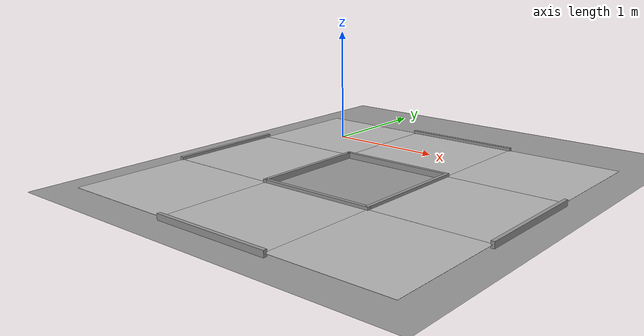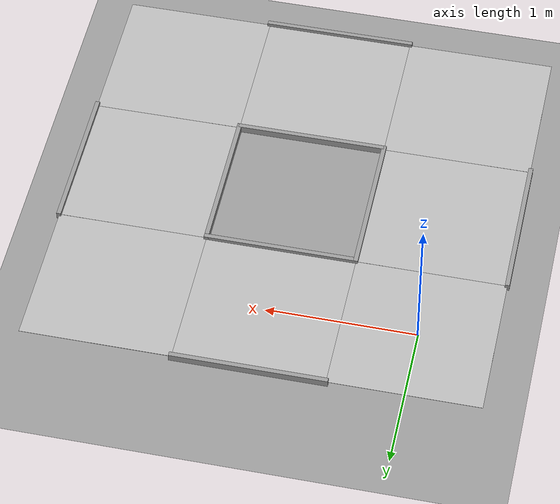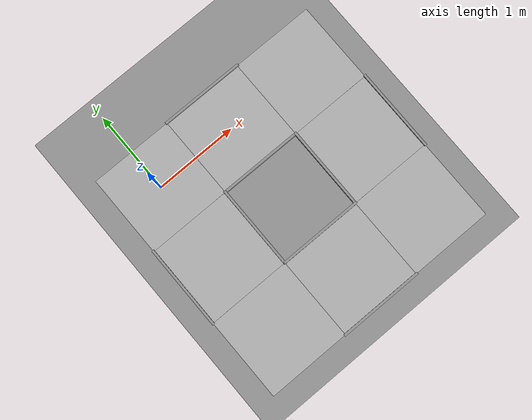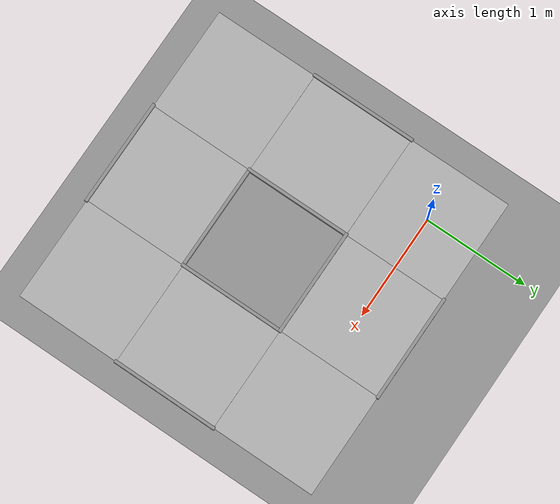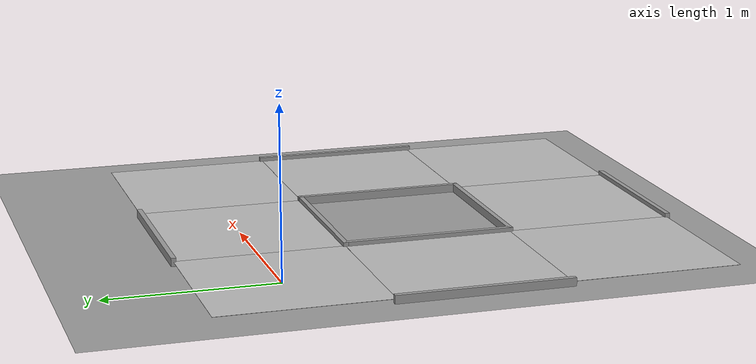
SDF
<sdf version="1.7">
 <world name="road_test">
  <scene>
   <ambient>120 120 120 255</ambient>
   <sky><clouds><speed>5</speed></clouds><time>13</time></sky>
   <background>0.7 0.7 0.7 1</background>
   <shadows>1</shadows>
  </scene>
  <model name="road_intersection_0_0">
   <frame name="road_intersection::__model__" attached_to="road_intersection::link">
    <pose relative_to="__model__">0 0 0 0 -0 0</pose>
   </frame>
   <static>1</static>
   <link name="road_intersection::link">
    <collision name="collision">
     <geometry><plane><normal>0 0 1</normal><size>1 1</size></plane></geometry>
     <surface><friction><ode><mu>75</mu><mu2>75</mu2></ode></friction></surface>
    </collision>
    <visual name="visual">
     <cast_shadows>0</cast_shadows>
     <geometry><plane><normal>0 0 1</normal><size>1 1</size></plane></geometry>
     <material>
      <script>
       <uri>model://road_intersection/materials/scripts</uri>
       <uri>model://road_intersection/materials/textures</uri>
       <name>road_intersection/Image</name>
      </script>
     </material>
    </visual>
    <pose relative_to="road_intersection::__model__">0 0 0 0 -0 0</pose>
   </link>
   <pose>0 0 0.02 0 -0 0</pose>
  </model>
  <model name="road_straight_0_1">
   <frame name="road_straight::__model__" attached_to="road_straight::link">
    <pose relative_to="__model__">0 0 0 0 -0 0</pose>
   </frame>
   <static>1</static>
   <link name="road_straight::link">
    <collision name="collision">
     <geometry><plane><normal>0 0 1</normal><size>1 1</size></plane></geometry>
     <surface><friction><ode><mu>75</mu><mu2>75</mu2></ode></friction></surface>
    </collision>
    <visual name="visual">
     <cast_shadows>0</cast_shadows>
     <geometry><plane><normal>0 0 1</normal><size>1 1</size></plane></geometry>
     <material>
      <script>
       <uri>model://road_straight/materials/scripts</uri>
       <uri>model://road_straight/materials/textures</uri>
       <name>road_straight/Image</name>
      </script>
     </material>
    </visual>
    <pose relative_to="road_straight::__model__">0 0 0 0 -0 0</pose>
   </link>
   <pose>1 0 0.02 0 -0 0</pose>
  </model>
  <model name="curb_0_1">
   <frame name="curb::__model__" attached_to="curb::Wall_0">
    <pose relative_to="__model__">0 0.5 0 0 -0 0</pose>
   </frame>
   <link name="curb::Wall_0">
    <collision name="Wall_0_Collision"><geometry><box><size>1.03 0.03 0.05</size></box></geometry></collision>
    <visual name="Wall_0_Visual">
     <geometry><box><size>1.03 0.03 0.05</size></box></geometry>
     <material>
      <script><uri>file://media/materials/scripts/gazebo.material</uri><name>Gazebo/Grey</name></script>
      <ambient>1 1 1 0.5</ambient>
      <diffuse>0 0 0 0</diffuse>
     </material>
     <meta><layer>0</layer></meta>
    </visual>
    <pose relative_to="curb::__model__">0 0 0 0 -0 3.14159</pose>
   </link>
   <link name="curb::Wall_2">
    <collision name="Wall_2_Collision"><geometry><box><size>1.03 0.03 0.05</size></box></geometry></collision>
    <visual name="Wall_2_Visual">
     <geometry><box><size>1.03 0.03 0.05</size></box></geometry>
     <material>
      <script><uri>file://media/materials/scripts/gazebo.material</uri><name>Gazebo/Grey</name></script>
      <ambient>1 1 1 0.5</ambient>
      <diffuse>0 0 0 0</diffuse>
     </material>
     <meta><layer>0</layer></meta>
    </visual>
    <pose relative_to="curb::__model__">0 -1 0 0 -0 0</pose>
   </link>
   <static>1</static>
   <pose>1 0 0.02 0 -0 0</pose>
  </model>
  <model name="road_intersection_0_2">
   <frame name="road_intersection::__model__" attached_to="road_intersection::link">
    <pose relative_to="__model__">0 0 0 0 -0 0</pose>
   </frame>
   <static>1</static>
   <link name="road_intersection::link">
    <collision name="collision">
     <geometry><plane><normal>0 0 1</normal><size>1 1</size></plane></geometry>
     <surface><friction><ode><mu>75</mu><mu2>75</mu2></ode></friction></surface>
    </collision>
    <visual name="visual">
     <cast_shadows>0</cast_shadows>
     <geometry><plane><normal>0 0 1</normal><size>1 1</size></plane></geometry>
     <material>
      <script>
       <uri>model://road_intersection/materials/scripts</uri>
       <uri>model://road_intersection/materials/textures</uri>
       <name>road_intersection/Image</name>
      </script>
     </material>
    </visual>
    <pose relative_to="road_intersection::__model__">0 0 0 0 -0 0</pose>
   </link>
   <pose>2 0 0.02 0 -0 0</pose>
  </model>
  <model name="road_straight_1_0">
   <frame name="road_straight::__model__" attached_to="road_straight::link">
    <pose relative_to="__model__">0 0 0 0 -0 0</pose>
   </frame>
   <static>1</static>
   <link name="road_straight::link">
    <collision name="collision">
     <geometry><plane><normal>0 0 1</normal><size>1 1</size></plane></geometry>
     <surface><friction><ode><mu>75</mu><mu2>75</mu2></ode></friction></surface>
    </collision>
    <visual name="visual">
     <cast_shadows>0</cast_shadows>
     <geometry><plane><normal>0 0 1</normal><size>1 1</size></plane></geometry>
     <material>
      <script>
       <uri>model://road_straight/materials/scripts</uri>
       <uri>model://road_straight/materials/textures</uri>
       <name>road_straight/Image</name>
      </script>
     </material>
    </visual>
    <pose relative_to="road_straight::__model__">0 0 0 0 -0 0</pose>
   </link>
   <pose>0 -1 0.02 0 -0 1.57</pose>
  </model>
  <model name="curb_1_0">
   <frame name="curb::__model__" attached_to="curb::Wall_0">
    <pose relative_to="__model__">0 0.5 0 0 -0 0</pose>
   </frame>
   <link name="curb::Wall_0">
    <collision name="Wall_0_Collision"><geometry><box><size>1.03 0.03 0.05</size></box></geometry></collision>
    <visual name="Wall_0_Visual">
     <geometry><box><size>1.03 0.03 0.05</size></box></geometry>
     <material>
      <script><uri>file://media/materials/scripts/gazebo.material</uri><name>Gazebo/Grey</name></script>
      <ambient>1 1 1 0.5</ambient>
      <diffuse>0 0 0 0</diffuse>
     </material>
     <meta><layer>0</layer></meta>
    </visual>
    <pose relative_to="curb::__model__">0 0 0 0 -0 3.14159</pose>
   </link>
   <link name="curb::Wall_2">
    <collision name="Wall_2_Collision"><geometry><box><size>1.03 0.03 0.05</size></box></geometry></collision>
    <visual name="Wall_2_Visual">
     <geometry><box><size>1.03 0.03 0.05</size></box></geometry>
     <material>
      <script><uri>file://media/materials/scripts/gazebo.material</uri><name>Gazebo/Grey</name></script>
      <ambient>1 1 1 0.5</ambient>
      <diffuse>0 0 0 0</diffuse>
     </material>
     <meta><layer>0</layer></meta>
    </visual>
    <pose relative_to="curb::__model__">0 -1 0 0 -0 0</pose>
   </link>
   <static>1</static>
   <pose>-0 -1 0.02 0 -0 1.57</pose>
  </model>
  <model name="ground_plane_1_1">
   <frame name="ground_plane::__model__" attached_to="ground_plane::link">
    <pose relative_to="__model__">0 0 0 0 -0 0</pose>
   </frame>
   <static>1</static>
   <link name="ground_plane::link">
    <collision name="collision">
     <geometry><plane><normal>0 0 1</normal><size>100 100</size></plane></geometry>
     <surface><friction><ode><mu>100</mu><mu2>50</mu2></ode></friction></surface>
    </collision>
    <visual name="visual">
     <cast_shadows>0</cast_shadows>
     <geometry><plane><normal>0 0 1</normal><size>100 100</size></plane></geometry>
     <material>
      <script><uri>file://media/materials/scripts/gazebo.material</uri><name>Gazebo/Grey</name></script>
     </material>
    </visual>
    <pose relative_to="ground_plane::__model__">0 0 0 0 -0 0</pose>
   </link>
   <pose>1 -1 0 0 -0 0</pose>
  </model>
  <model name="road_straight_1_2">
   <frame name="road_straight::__model__" attached_to="road_straight::link">
    <pose relative_to="__model__">0 0 0 0 -0 0</pose>
   </frame>
   <static>1</static>
   <link name="road_straight::link">
    <collision name="collision">
     <geometry><plane><normal>0 0 1</normal><size>1 1</size></plane></geometry>
     <surface><friction><ode><mu>75</mu><mu2>75</mu2></ode></friction></surface>
    </collision>
    <visual name="visual">
     <cast_shadows>0</cast_shadows>
     <geometry><plane><normal>0 0 1</normal><size>1 1</size></plane></geometry>
     <material>
      <script>
       <uri>model://road_straight/materials/scripts</uri>
       <uri>model://road_straight/materials/textures</uri>
       <name>road_straight/Image</name>
      </script>
     </material>
    </visual>
    <pose relative_to="road_straight::__model__">0 0 0 0 -0 0</pose>
   </link>
   <pose>2 -1 0.02 0 -0 1.57</pose>
  </model>
  <model name="curb_1_2">
   <frame name="curb::__model__" attached_to="curb::Wall_0">
    <pose relative_to="__model__">0 0.5 0 0 -0 0</pose>
   </frame>
   <link name="curb::Wall_0">
    <collision name="Wall_0_Collision"><geometry><box><size>1.03 0.03 0.05</size></box></geometry></collision>
    <visual name="Wall_0_Visual">
     <geometry><box><size>1.03 0.03 0.05</size></box></geometry>
     <material>
      <script><uri>file://media/materials/scripts/gazebo.material</uri><name>Gazebo/Grey</name></script>
      <ambient>1 1 1 0.5</ambient>
      <diffuse>0 0 0 0</diffuse>
     </material>
     <meta><layer>0</layer></meta>
    </visual>
    <pose relative_to="curb::__model__">0 0 0 0 -0 3.14159</pose>
   </link>
   <link name="curb::Wall_2">
    <collision name="Wall_2_Collision"><geometry><box><size>1.03 0.03 0.05</size></box></geometry></collision>
    <visual name="Wall_2_Visual">
     <geometry><box><size>1.03 0.03 0.05</size></box></geometry>
     <material>
      <script><uri>file://media/materials/scripts/gazebo.material</uri><name>Gazebo/Grey</name></script>
      <ambient>1 1 1 0.5</ambient>
      <diffuse>0 0 0 0</diffuse>
     </material>
     <meta><layer>0</layer></meta>
    </visual>
    <pose relative_to="curb::__model__">0 -1 0 0 -0 0</pose>
   </link>
   <static>1</static>
   <pose>2 -1 0.02 0 -0 1.57</pose>
  </model>
  <model name="road_intersection_2_0">
   <frame name="road_intersection::__model__" attached_to="road_intersection::link">
    <pose relative_to="__model__">0 0 0 0 -0 0</pose>
   </frame>
   <static>1</static>
   <link name="road_intersection::link">
    <collision name="collision">
     <geometry><plane><normal>0 0 1</normal><size>1 1</size></plane></geometry>
     <surface><friction><ode><mu>75</mu><mu2>75</mu2></ode></friction></surface>
    </collision>
    <visual name="visual">
     <cast_shadows>0</cast_shadows>
     <geometry><plane><normal>0 0 1</normal><size>1 1</size></plane></geometry>
     <material>
      <script>
       <uri>model://road_intersection/materials/scripts</uri>
       <uri>model://road_intersection/materials/textures</uri>
       <name>road_intersection/Image</name>
      </script>
     </material>
    </visual>
    <pose relative_to="road_intersection::__model__">0 0 0 0 -0 0</pose>
   </link>
   <pose>0 -2 0.02 0 -0 0</pose>
  </model>
  <model name="road_straight_2_1">
   <frame name="road_straight::__model__" attached_to="road_straight::link">
    <pose relative_to="__model__">0 0 0 0 -0 0</pose>
   </frame>
   <static>1</static>
   <link name="road_straight::link">
    <collision name="collision">
     <geometry><plane><normal>0 0 1</normal><size>1 1</size></plane></geometry>
     <surface><friction><ode><mu>75</mu><mu2>75</mu2></ode></friction></surface>
    </collision>
    <visual name="visual">
     <cast_shadows>0</cast_shadows>
     <geometry><plane><normal>0 0 1</normal><size>1 1</size></plane></geometry>
     <material>
      <script>
       <uri>model://road_straight/materials/scripts</uri>
       <uri>model://road_straight/materials/textures</uri>
       <name>road_straight/Image</name>
      </script>
     </material>
    </visual>
    <pose relative_to="road_straight::__model__">0 0 0 0 -0 0</pose>
   </link>
   <pose>1 -2 0.02 0 -0 0</pose>
  </model>
  <model name="curb_2_1">
   <frame name="curb::__model__" attached_to="curb::Wall_0">
    <pose relative_to="__model__">0 0.5 0 0 -0 0</pose>
   </frame>
   <link name="curb::Wall_0">
    <collision name="Wall_0_Collision"><geometry><box><size>1.03 0.03 0.05</size></box></geometry></collision>
    <visual name="Wall_0_Visual">
     <geometry><box><size>1.03 0.03 0.05</size></box></geometry>
     <material>
      <script><uri>file://media/materials/scripts/gazebo.material</uri><name>Gazebo/Grey</name></script>
      <ambient>1 1 1 0.5</ambient>
      <diffuse>0 0 0 0</diffuse>
     </material>
     <meta><layer>0</layer></meta>
    </visual>
    <pose relative_to="curb::__model__">0 0 0 0 -0 3.14159</pose>
   </link>
   <link name="curb::Wall_2">
    <collision name="Wall_2_Collision"><geometry><box><size>1.03 0.03 0.05</size></box></geometry></collision>
    <visual name="Wall_2_Visual">
     <geometry><box><size>1.03 0.03 0.05</size></box></geometry>
     <material>
      <script><uri>file://media/materials/scripts/gazebo.material</uri><name>Gazebo/Grey</name></script>
      <ambient>1 1 1 0.5</ambient>
      <diffuse>0 0 0 0</diffuse>
     </material>
     <meta><layer>0</layer></meta>
    </visual>
    <pose relative_to="curb::__model__">0 -1 0 0 -0 0</pose>
   </link>
   <static>1</static>
   <pose>1 -2 0.02 0 -0 0</pose>
  </model>
  <model name="road_intersection_2_2">
   <frame name="road_intersection::__model__" attached_to="road_intersection::link">
    <pose relative_to="__model__">0 0 0 0 -0 0</pose>
   </frame>
   <static>1</static>
   <link name="road_intersection::link">
    <collision name="collision">
     <geometry><plane><normal>0 0 1</normal><size>1 1</size></plane></geometry>
     <surface><friction><ode><mu>75</mu><mu2>75</mu2></ode></friction></surface>
    </collision>
    <visual name="visual">
     <cast_shadows>0</cast_shadows>
     <geometry><plane><normal>0 0 1</normal><size>1 1</size></plane></geometry>
     <material>
      <script>
       <uri>model://road_intersection/materials/scripts</uri>
       <uri>model://road_intersection/materials/textures</uri>
       <name>road_intersection/Image</name>
      </script>
     </material>
    </visual>
    <pose relative_to="road_intersection::__model__">0 0 0 0 -0 0</pose>
   </link>
   <pose>2 -2 0.02 0 -0 0</pose>
  </model>
  <light name="sun" type="directional">
   <pose>0 0 10 0 -0 0</pose>
   <diffuse>0.8 0.8 0.8 1</diffuse>
   <specular>0.2 0.2 0.2 1</specular>
   <attenuation>
    <range>1000</range>
    <constant>0.9</constant>
    <linear>0.01</linear>
    <quadratic>0.001</quadratic>
   </attenuation>
   <direction>-0.5 0.1 -0.9</direction>
   <spot><inner_angle>0</inner_angle><outer_angle>0</outer_angle><falloff>0</falloff></spot>
  </light>
  <gravity>0 0 -9.8</gravity>
  <magnetic_field>6e-06 2.3e-05 -4.2e-05</magnetic_field>
  <atmosphere type="adiabatic"/>
  <physics type="ode">
   <max_step_size>0.001</max_step_size>
   <real_time_factor>1</real_time_factor>
   <real_time_update_rate>1000</real_time_update_rate>
  </physics>
  <spherical_coordinates>
   <surface_model>EARTH_WGS84</surface_model>
   <latitude_deg>0</latitude_deg>
   <longitude_deg>0</longitude_deg>
   <elevation>0</elevation>
   <heading_deg>0</heading_deg>
  </spherical_coordinates>
 </world>
</sdf>
